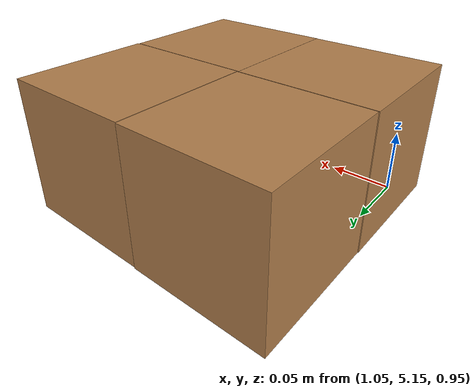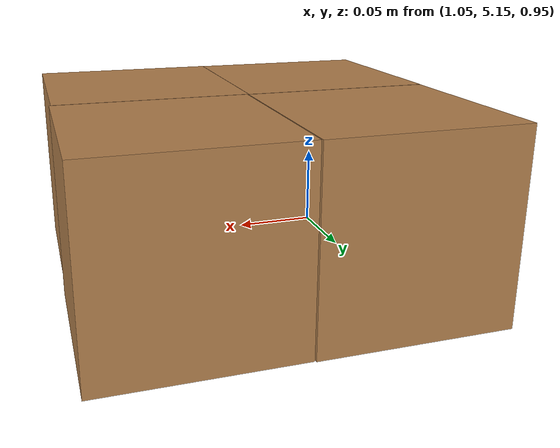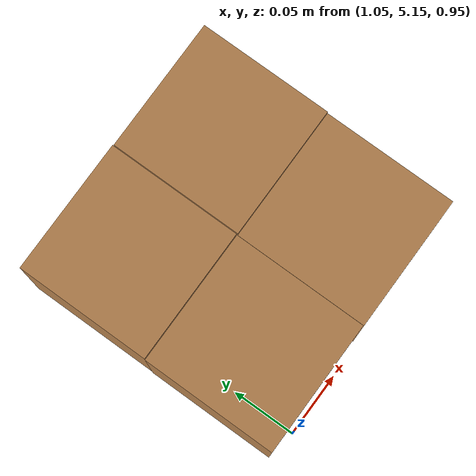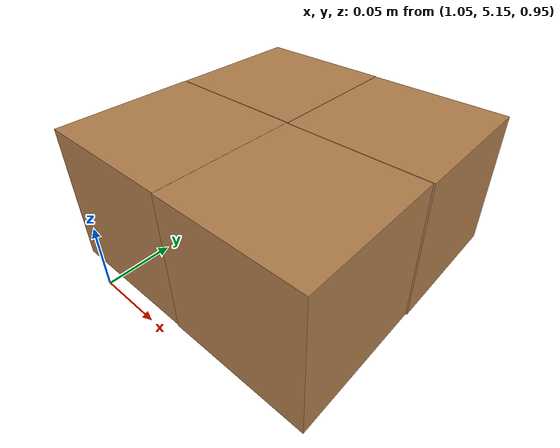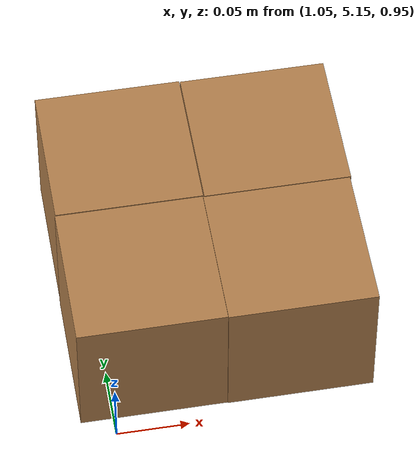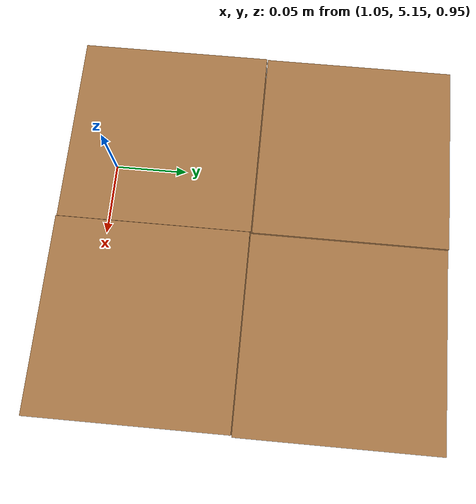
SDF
<sdf version="1.7">
 <world name="default">
  <light name="sun" type="directional">
   <pose>0 0 10 0 -0 0</pose>
   <diffuse>0.8 0.8 0.8 1</diffuse>
   <specular>0.2 0.2 0.2 1</specular>
   <attenuation>
    <range>1000</range>
    <constant>0.9</constant>
    <linear>0.01</linear>
    <quadratic>0.001</quadratic>
   </attenuation>
   <direction>-0.5 0.1 -0.9</direction>
   <spot><inner_angle>0</inner_angle><outer_angle>0</outer_angle><falloff>0</falloff></spot>
  </light>
  <model name="ground_plane">
   <static>1</static>
   <link name="link">
    <collision name="collision">
     <geometry><plane><normal>0 0 1</normal><size>100 100</size></plane></geometry>
     <surface><friction><ode><mu>100</mu><mu2>50</mu2></ode></friction></surface>
    </collision>
    <visual name="visual">
     <cast_shadows>0</cast_shadows>
     <geometry><plane><normal>0 0 1</normal><size>100 100</size></plane></geometry>
     <material>
      <script><uri>file://media/materials/scripts/gazebo.material</uri><name>Gazebo/Grey</name></script>
     </material>
    </visual>
   </link>
  </model>
  <gravity>0 0 -9.8</gravity>
  <magnetic_field>6e-06 2.3e-05 -4.2e-05</magnetic_field>
  <atmosphere type="adiabatic"/>
  <physics type="ode">
   <max_step_size>0.001</max_step_size>
   <real_time_factor>1</real_time_factor>
   <real_time_update_rate>1000</real_time_update_rate>
  </physics>
  <scene><ambient>0.4 0.4 0.4 1</ambient><background>0.7 0.7 0.7 1</background><shadows>1</shadows></scene>
  <spherical_coordinates>
   <surface_model>EARTH_WGS84</surface_model>
   <latitude_deg>0</latitude_deg>
   <longitude_deg>0</longitude_deg>
   <elevation>0</elevation>
   <heading_deg>0</heading_deg>
  </spherical_coordinates>
  <model name="wood_cube_10cm">
   <link name="link">
    <pose>0 0 0.05 0 -0 0</pose>
    <inertial>
     <mass>0.5167</mass>
     <inertia>
      <ixx>0.000861167</ixx>
      <ixy>0</ixy>
      <ixz>0</ixz>
      <iyy>0.000861167</iyy>
      <iyz>0</iyz>
      <izz>0.000861167</izz>
     </inertia>
    </inertial>
    <collision name="collision">
     <geometry><box><size>0.1 0.1 0.1</size></box></geometry>
     <surface>
      <contact>
       <poissons_ratio>0.347</poissons_ratio>
       <elastic_modulus>8.8e+09</elastic_modulus>
       <ode><kp>100000</kp><kd>100</kd><max_vel>100</max_vel><min_depth>0.001</min_depth></ode>
      </contact>
      <friction>
       <torsional>
        <coefficient>1</coefficient>
        <use_patch_radius>0</use_patch_radius>
        <surface_radius>0.01</surface_radius>
       </torsional>
      </friction>
     </surface>
    </collision>
    <visual name="visual">
     <geometry><box><size>0.1 0.1 0.1</size></box></geometry>
     <material>
      <script><uri>file://media/materials/scripts/gazebo.material</uri><name>Gazebo/Wood</name></script>
     </material>
    </visual>
   </link>
   <pose>1.07698 5.30426 0.963749 0 0 -0.000603</pose>
  </model>
  <model name="wood_cube_10cm_clone">
   <link name="link">
    <pose>0 0 0.05 0 -0 0</pose>
    <inertial>
     <mass>0.5167</mass>
     <inertia>
      <ixx>0.000861167</ixx>
      <ixy>0</ixy>
      <ixz>0</ixz>
      <iyy>0.000861167</iyy>
      <iyz>0</iyz>
      <izz>0.000861167</izz>
     </inertia>
    </inertial>
    <collision name="collision">
     <geometry><box><size>0.1 0.1 0.1</size></box></geometry>
     <surface>
      <contact>
       <poissons_ratio>0.347</poissons_ratio>
       <elastic_modulus>8.8e+09</elastic_modulus>
       <ode><kp>100000</kp><kd>100</kd><max_vel>100</max_vel><min_depth>0.001</min_depth></ode>
      </contact>
      <friction>
       <torsional>
        <coefficient>1</coefficient>
        <use_patch_radius>0</use_patch_radius>
        <surface_radius>0.01</surface_radius>
       </torsional>
      </friction>
     </surface>
    </collision>
    <visual name="visual">
     <geometry><box><size>0.1 0.1 0.1</size></box></geometry>
     <material>
      <script><uri>file://media/materials/scripts/gazebo.material</uri><name>Gazebo/Wood</name></script>
     </material>
    </visual>
   </link>
   <pose>1.07652 5.20367 0.963757 2.6e-05 -0 -0.000606</pose>
  </model>
  <model name="wood_cube_10cm_clone_0">
   <link name="link">
    <pose>0 0 0.05 0 -0 0</pose>
    <inertial>
     <mass>0.5167</mass>
     <inertia>
      <ixx>0.000861167</ixx>
      <ixy>0</ixy>
      <ixz>0</ixz>
      <iyy>0.000861167</iyy>
      <iyz>0</iyz>
      <izz>0.000861167</izz>
     </inertia>
    </inertial>
    <collision name="collision">
     <geometry><box><size>0.1 0.1 0.1</size></box></geometry>
     <surface>
      <contact>
       <poissons_ratio>0.347</poissons_ratio>
       <elastic_modulus>8.8e+09</elastic_modulus>
       <ode><kp>100000</kp><kd>100</kd><max_vel>100</max_vel><min_depth>0.001</min_depth></ode>
      </contact>
      <friction>
       <torsional>
        <coefficient>1</coefficient>
        <use_patch_radius>0</use_patch_radius>
        <surface_radius>0.01</surface_radius>
       </torsional>
      </friction>
     </surface>
    </collision>
    <visual name="visual">
     <geometry><box><size>0.1 0.1 0.1</size></box></geometry>
     <material>
      <script><uri>file://media/materials/scripts/gazebo.material</uri><name>Gazebo/Wood</name></script>
     </material>
    </visual>
   </link>
   <pose>1.17663 5.20313 0.963756 2.9e-05 -0 -0.000603</pose>
  </model>
  <model name="wood_cube_10cm_clone_0_clone">
   <link name="link">
    <pose>0 0 0.05 0 -0 0</pose>
    <inertial>
     <mass>0.5167</mass>
     <inertia>
      <ixx>0.000861167</ixx>
      <ixy>0</ixy>
      <ixz>0</ixz>
      <iyy>0.000861167</iyy>
      <iyz>0</iyz>
      <izz>0.000861167</izz>
     </inertia>
    </inertial>
    <collision name="collision">
     <geometry><box><size>0.1 0.1 0.1</size></box></geometry>
     <surface>
      <contact>
       <poissons_ratio>0.347</poissons_ratio>
       <elastic_modulus>8.8e+09</elastic_modulus>
       <ode><kp>100000</kp><kd>100</kd><max_vel>100</max_vel><min_depth>0.001</min_depth></ode>
      </contact>
      <friction>
       <torsional>
        <coefficient>1</coefficient>
        <use_patch_radius>0</use_patch_radius>
        <surface_radius>0.01</surface_radius>
       </torsional>
      </friction>
     </surface>
    </collision>
    <visual name="visual">
     <geometry><box><size>0.1 0.1 0.1</size></box></geometry>
     <material>
      <script><uri>file://media/materials/scripts/gazebo.material</uri><name>Gazebo/Wood</name></script>
     </material>
    </visual>
   </link>
   <pose>1.17755 5.30362 0.963749 0 0 -0.000602</pose>
  </model>
 </world>
</sdf>
